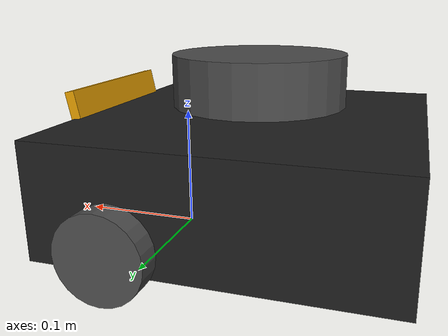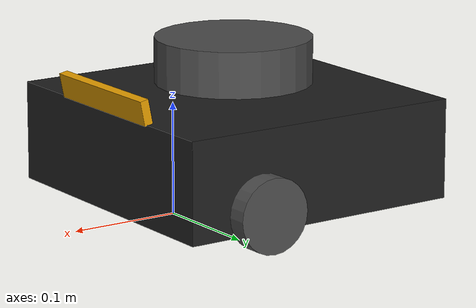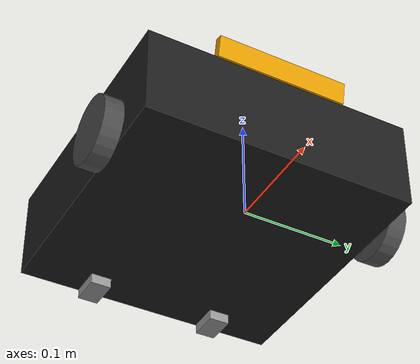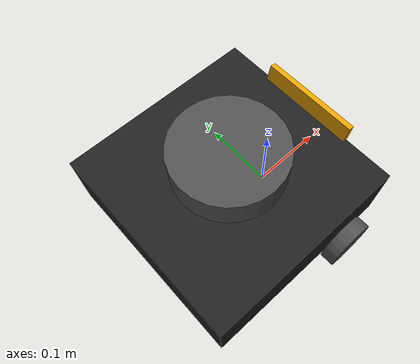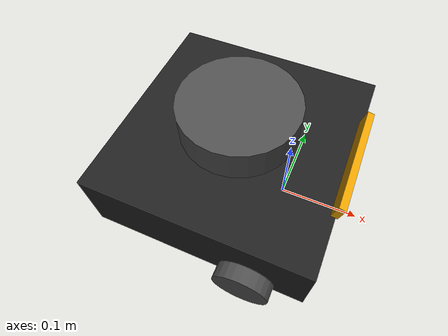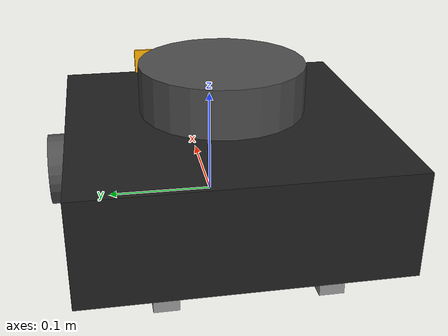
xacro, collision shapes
<?xml version="1.0" ?>
<robot name="turtlebot3_waffle" xmlns:xacro="http://ros.org/wiki/xacro">
  <xacro:include filename="$(find turtlebot3_description)/urdf/common_properties.xacro"/>
  <xacro:include filename="$(find turtlebot3_description)/urdf/turtlebot3_waffle.gazebo.xacro"/>

  <xacro:property name="r200_cam_offset_px" value="0.1" />
  <xacro:property name="r200_cam_offset_py" value="-0.028" />
  <xacro:property name="r200_cam_offset_pz" value="0.110" />

  <xacro:property name="r200_cam_rgb_px" value="0.005"/>
  <xacro:property name="r200_cam_rgb_py" value="0.018"/>
  <xacro:property name="r200_cam_rgb_pz" value="0.013"/>
  <xacro:property name="r200_cam_depth_offset" value="0.01"/>

  <link name="base_footprint"/>

  <joint name="base_joint" type="fixed">
    <parent link="base_footprint"/>
    <child link="base_link" />
    <origin xyz="0 0 0.010" rpy="0 0 0"/>
  </joint>

  <link name="base_link">
    <visual>
      <origin xyz="-0.064 0 0.0" rpy="0 0 0"/>
      <geometry>
        <mesh filename="package://turtlebot3_description/meshes/bases/waffle_base.stl" scale="0.001 0.001 0.001"/>
      </geometry>
      <material name="light_black"/>
    </visual>
    <collision>
      <origin xyz="-0.064 0 0.048" rpy="0 0 0"/>
      <geometry>
        <box size="0.265 0.265 0.089"/>
      </geometry>
    </collision>
    <inertial>
      <origin xyz="-0.064 0 0" rpy="0 0 0"/>
      <mass value="1"/>
      <inertia ixx="0.01" ixy="0.0" ixz="0.0"
               iyy="0.01" iyz="0.0"
               izz="0.01" />
    </inertial>
  </link>

  <joint name="wheel_left_joint" type="continuous">
    <parent link="base_link"/>
    <child link="wheel_left_link"/>
    <origin xyz="0.0 0.144 0.023" rpy="${-M_PI*0.5} 0 0"/>
    <axis xyz="0 0 1"/>
  </joint>

  <link name="wheel_left_link">
    <visual>
      <origin xyz="0 0 0" rpy="${M_PI*0.5} 0 0"/>
      <geometry>
        <mesh filename="package://turtlebot3_description/meshes/wheels/left_tire.stl" scale="0.001 0.001 0.001"/>
      </geometry>
      <material name="dark"/>
    </visual>
    <collision>
      <origin rpy="0 0 0" xyz="0 0 0"/>
      <geometry>
        <cylinder length="0.018" radius="0.033"/>
      </geometry>
    </collision>
    <inertial>
      <origin xyz="0 0 0" />
      <mass value="0.01" />
      <inertia ixx="0.001" ixy="0.0" ixz="0.0"
               iyy="0.001" iyz="0.0"
               izz="0.001" />
    </inertial>
  </link>

  <joint name="wheel_right_joint" type="continuous">
    <parent link="base_link"/>
    <child link="wheel_right_link"/>
    <origin xyz="0.0 -0.144 0.023" rpy="${-M_PI*0.5} 0 0"/>
    <axis xyz="0 0 1"/>
  </joint>

  <link name="wheel_right_link">
    <visual>
      <origin xyz="0 0 0" rpy="${M_PI*0.5} 0 0"/>
      <geometry>
        <mesh filename="package://turtlebot3_description/meshes/wheels/right_tire.stl" scale="0.001 0.001 0.001"/>
      </geometry>
      <material name="dark"/>
    </visual>
    <collision>
      <origin rpy="0 0 0" xyz="0 0 0"/>
      <geometry>
        <cylinder length="0.018" radius="0.033"/>
      </geometry>
    </collision>
    <inertial>
      <origin xyz="0 0 0" />
      <mass value="0.01" />
      <inertia ixx="0.001" ixy="0.0" ixz="0.0"
               iyy="0.001" iyz="0.0"
               izz="0.001" />
    </inertial>
  </link>

  <joint name="caster_back_right_joint" type="fixed">
    <parent link="base_link"/>
    <child link="caster_back_right_link"/>
    <origin xyz="-0.177 -0.064 -0.004" rpy="${-M_PI*0.5} 0 0"/>
  </joint>

  <link name="caster_back_right_link">
    <collision>
      <origin rpy="0 0 0" xyz="0 0 0"/>
      <geometry>
        <box size="0.030 0.010 0.020"/>
      </geometry>
    </collision>

    <inertial>
      <origin xyz="0 0 0" />
      <mass value="0.01" />
      <inertia ixx="0.001" ixy="0.0" ixz="0.0"
               iyy="0.001" iyz="0.0"
               izz="0.001" />
    </inertial>
  </link>

  <joint name="caster_back_left_joint" type="fixed">
    <parent link="base_link"/>
    <child link="caster_back_left_link"/>
    <origin xyz="-0.177 0.064 -0.004" rpy="${-M_PI*0.5} 0 0"/>
  </joint>

  <link name="caster_back_left_link">
    <collision>
      <origin rpy="0 0 0" xyz="0 0 0"/>
      <geometry>
        <box size="0.030 0.010 0.020"/>
      </geometry>
    </collision>

    <inertial>
      <origin xyz="0 0 0" />
      <mass value="0.01" />
      <inertia ixx="0.001" ixy="0.0" ixz="0.0"
               iyy="0.001" iyz="0.0"
               izz="0.001" />
    </inertial>
  </link>

  <joint name="imu_joint" type="fixed">
    <parent link="base_link"/>
    <child link="imu_link"/>
    <origin xyz="0.0 0 0.068" rpy="0 0 0"/>
  </joint>

  <link name="imu_link"/>

  <joint name="scan_joint" type="fixed">
    <parent link="base_link"/>
    <child link="base_scan"/>
    <origin xyz="-0.064 0 0.121" rpy="0 0 0"/>
  </joint>

  <link name="base_scan">
    <visual>
      <origin xyz="0 0 0.0" rpy="0 0 0"/>
      <geometry>
        <mesh filename="package://turtlebot3_description/meshes/sensors/lds.stl" scale="0.001 0.001 0.001"/>
      </geometry>
      <material name="dark"/>
    </visual>
    <collision>
      <origin rpy="0 0 0" xyz="0 0 0"/>
      <geometry>
        <cylinder length="0.0408" radius="0.070"/>
      </geometry>
    </collision>
    <inertial>
      <mass value="0.01" />
      <origin xyz="0 0 0" />
      <inertia ixx="0.001" ixy="0.0" ixz="0.0"
               iyy="0.001" iyz="0.0"
               izz="0.001" />
    </inertial>
  </link>

  <joint name="camera_joint" type="fixed">
    <origin xyz="0.064 -0.065 0.094" rpy="0 0.2 0"/>
    <parent link="base_link"/>
    <child link="camera_link"/>
  </joint>

  <link name="camera_link">
    <visual>
     <origin xyz="0 0 0" rpy="${M_PI*0.5} 0 ${M_PI*0.5}"/>
      <geometry>
       <mesh filename="package://turtlebot3_description/meshes/sensors/r200.dae" />
      </geometry>
    </visual>
    <collision>
      <origin xyz="0.003 0.065 0.010" rpy="0 0 0"/>
      <geometry>
        <box size="0.008 0.130 0.022"/>
      </geometry>
    </collision>

    <!-- This inertial field needs doesn't contain reliable data!! -->
  </link>

  <joint name="camera_rgb_joint" type="fixed">
    <origin xyz="${r200_cam_rgb_px} ${r200_cam_rgb_py} ${r200_cam_rgb_pz}" rpy="0 0 0"/>
    <parent link="camera_link"/>
    <child link="camera_rgb_frame"/>
  </joint>
  <link name="camera_rgb_frame"/>

  <joint name="camera_rgb_optical_joint" type="fixed">
    <origin xyz="0 0 0" rpy="${-M_PI/2} 0 ${-M_PI/2}"/>
    <parent link="camera_rgb_frame"/>
    <child link="camera_rgb_optical_frame"/>
  </joint>
  <link name="camera_rgb_optical_frame"/>

  <joint name="camera_depth_joint" type="fixed">
      <origin xyz="0 ${r200_cam_depth_offset} 0" rpy="0 0 0"/>
      <parent link="camera_rgb_frame"/>
      <child link="camera_depth_frame"/>
  </joint>
  <link name="camera_depth_frame"/>

  <joint name="camera_depth_optical_joint" type="fixed">
      <origin xyz="0 0 0" rpy="${-M_PI/2} 0 ${-M_PI/2}"/>
      <parent link="camera_depth_frame"/>
      <child link="camera_depth_optical_frame"/>
  </joint>
  <link name="camera_depth_optical_frame"/>

</robot>
